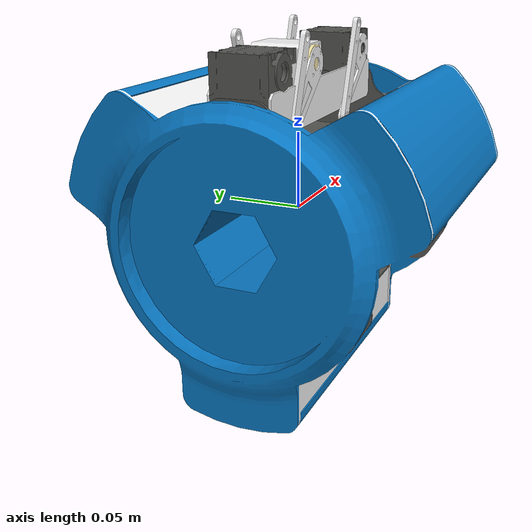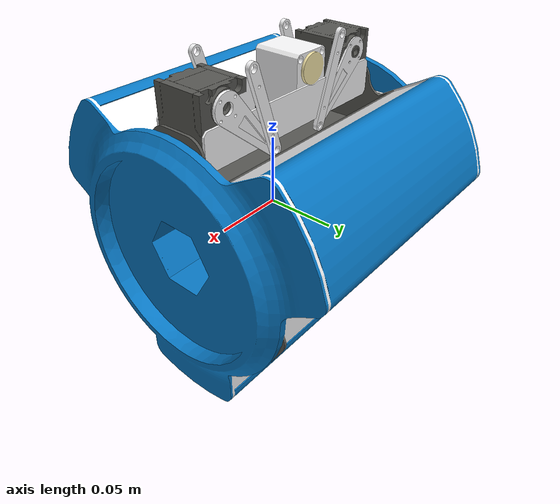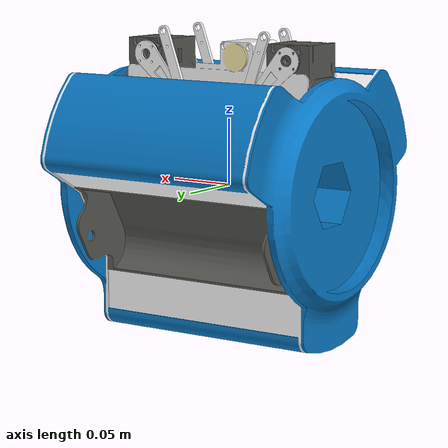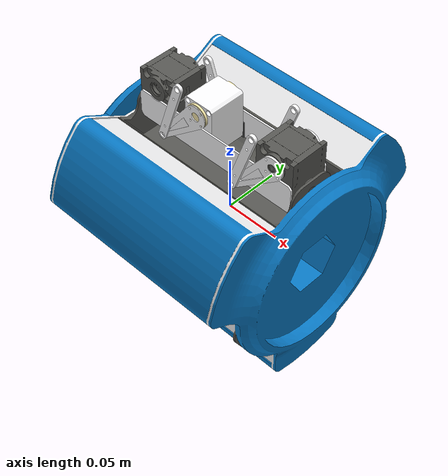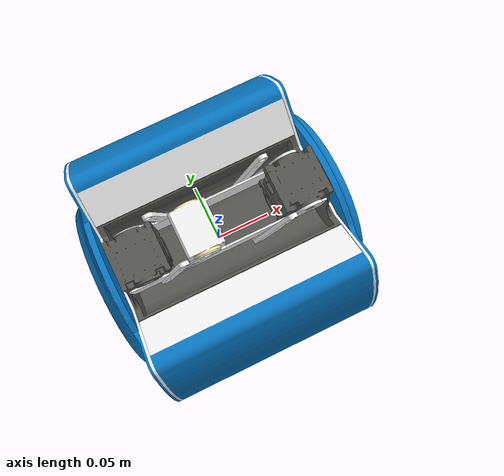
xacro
<robot xmlns:xacro="http://wiki.ros.org/xacro" name="test">

  <xacro:include filename="import_path.xacro"/>

  <xacro:body sufix="1">
  </xacro:body>

  <xacro:leg sufix="1"/><joint name="AttachableJoint_1body1_1leg1" type="fixed"><parent link="AttachableLink_1_body_1"/><child link="AttachableLink_1_leg_1"/><origin rpy="0 0 0" xyz="0 0 0"/></joint></robot>

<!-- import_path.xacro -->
<robot name="imports" xmlns:xacro="http://wiki.ros.org/xacro">

  <xacro:include filename="../models/rm2_body.xacro" />
  <xacro:include filename="../models/rm2_leg.xacro" />

</robot>

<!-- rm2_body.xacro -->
<robot name="body" xmlns:xacro="http://wiki.ros.org/xacro">

<xacro:macro name="body" params="sufix ">

  <link name='bodyBase_body_${sufix}'>
      <visual>
        <origin rpy="0 0 0" xyz="0 0 0"/>
        <geometry>
          <mesh filename="package://rm2_simulation/models/rm2_body/meshes/b_simple.dae"/>
        </geometry>
      </visual>
    <collision>
      <origin rpy="0 0 0" xyz="0 0 0"/>
      <geometry>
        <!--mesh filename="package://rm2_simulation/models/rm2_body/meshes/body_collision.stl"/-->
        <mesh filename="package://rm2_simulation/models/rm2_body/meshes/body_collision.stl"/>
      </geometry>
    </collision>
    <inertial>
        <mass value = "1.8" />
        <inertia ixx="2.501" ixy="0" ixz="0" iyy="2.501" iyz="0.0" izz="5"/>
    </inertial>
  </link>

  <link name="AttachableLink_1_body_${sufix}"/>
  <joint name="AttachableLinkJoint_1_body_${sufix}" type="fixed">
    <parent link="bodyBase_body_${sufix}"/>
    <child link="AttachableLink_1_body_${sufix}"/>
    <origin rpy="0 0 0" xyz="0.0 0 0.085"/>
  </joint>

  <link name="AttachableLink_2_body_${sufix}"/>
  <joint name="AttachableLinkJoint_2_body_${sufix}" type="fixed">
    <parent link="bodyBase_body_${sufix}"/>
    <child link="AttachableLink_2_body_${sufix}"/>
    <origin rpy="-2.0944 0 0" xyz="0.0 0.0736 -0.0425"/>
  </joint>

  <link name="AttachableLink_3_body_${sufix}"/>
  <joint name="AttachableLinkJoint_3_body_${sufix}" type="fixed">
    <parent link="bodyBase_body_${sufix}"/>
    <child link="AttachableLink_3_body_${sufix}"/>
    <origin rpy="2.0944 0 0" xyz="0.0 -0.0736 -0.0425"/>
  </joint>

</xacro:macro>

</robot>

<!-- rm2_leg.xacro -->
<robot name= "leg" xmlns:xacro="http://wiki.ros.org/xacro">
  <xacro:macro name="leg" params="sufix ">
    <link name="legLink_leg_${sufix}">
      <visual>
        <origin rpy="0.0 0 0" xyz="0 0 0"/>
        <geometry>
          <mesh filename="package://rm2_simulation/models/rm2_leg/meshes/l_simple.dae"/>
        </geometry>
      </visual>
      <collision>
        <geometry>
          <box size="0.166 0.040 0.047"/>
        </geometry>
        <origin rpy="0.0 0 0" xyz="0 0 0"/>
      </collision>
      <inertial>
        <mass value="0.6"/>
        <inertia ixx="0.032" ixy="0.0" ixz="0.0" iyy="0.032" iyz="0" izz="0.00012" />
      </inertial>
    </link>

    <!-- INCLUDE FRAME MOTOR 1 -->
    <link name="fm1Link_leg_${sufix}">
      <visual>
        <origin rpy="0 0 0" xyz="-0.0132 0 -0.01"/>
        <geometry>
          <mesh filename="package://rm2_simulation/models/rm2_leg/meshes/fm1_real.dae"/>
        </geometry>
      </visual>
      <collision>
        <geometry>
          <!--scale value="0.001 0.001 0.001"/-->
          <mesh filename="package://rm2_simulation/models/rm2_leg/meshes/fm1_collision.stl" scale="0.001 0.001 0.001"/>
        </geometry>
        <origin rpy="0.0 0 0" xyz="-0.0132 0 -0.0081"/> <!-- HAY QUE CAMBIAR ESTO -->
      </collision>
      <inertial>
        <mass value="0.1"/>
        <inertia ixx="0.032" ixy ="0" ixz ="0.0" iyy="0.032" iyz="0.0" izz="0.00012"/>
      </inertial>
    </link>

    <!-- JOINT LEG - FRAME MOTOR 1 -->
    <joint name="j_l_fm1_leg_${sufix}" type="fixed">
      <parent link="legLink_leg_${sufix}"/>
      <child link="fm1Link_leg_${sufix}"/>
      <axis xyz="0 1 0"/>
      <origin rpy="0 0 0" xyz="0.067490 0 0.009020"/>
      <limit effort="100.0" lower="0.0" upper="0.548" velocity="0.5"/>
      <!--dynamics damping="0.0" friction="0.0"/-->
    </joint>

    <!-- INCLUDE FRAME MOTOR 2 -->
    <link name="fm2Link_leg_${sufix}">
      <visual>
        <origin rpy="0.0 0 0" xyz="0.0125 0 -0.0134"/>
        <geometry>
          <mesh filename="package://rm2_simulation/models/rm2_leg/meshes/fm2_real.dae"/>
        </geometry>
      </visual>
      <collision>
        <geometry>
          <!--scale value="0.001 0.001 0.001"/-->
          <mesh filename="package://rm2_simulation/models/rm2_leg/meshes/fm2_collision.stl" scale="0.001 0.001 0.001"/>
        </geometry>
        <origin rpy="0.0 0 0" xyz="-0.0132 0 -0.0081"/> <!-- HAY QUE CAMBIAR ESTO -->
      </collision>
      <inertial>
        <mass value="0.1"/>
        <inertia ixx="0.032" ixy="0.0" ixz="0.0" iyy="0.032" iyz="0.0" izz="0.00012"/>
      </inertial>
    </link>

    <!-- JOINT LEG - FRAME MOTOR 2 -->
    <joint name="j_l_fm2_leg_${sufix}" type="fixed">
      <axis xyz="0 1 0"/>
      <parent link="legLink_leg_${sufix}"/>
      <child link="fm2Link_leg_${sufix}"/>
      <origin rpy="0 0 0" xyz="-0.057399 0.018994 0.012734"/>
    </joint>

    <!-- INCLUDE FRAME MOTOR 3 -->
    <link name="fm3Link_leg_${sufix}">
      <visual>
        <origin rpy="0 0 0" xyz="-0.0132 0 -0.0140"/>
        <geometry>
          <mesh filename="package://rm2_simulation/models/rm2_leg/meshes/fm3_real.dae"/>
        </geometry>
      </visual>
      <collision>
        <geometry>
          <!--scale value="0.001 0.001 0.001"/-->
          <mesh filename="package://rm2_simulation/models/rm2_leg/meshes/fm3_collision.stl" scale="0.001 0.001 0.001"/>
        </geometry>
        <origin rpy="0.0 0 0" xyz="-0.0132 0 -0.0081"/> <!-- HAY QUE CAMBIAR ESTO -->
      </collision>
      <inertial>
        <mass value="0.1"/>
        <inertia ixx="0.032" ixy="0.0" ixz="0.0" iyy="0.032" iyz="0.0" izz="0.00012"/>
      </inertial>
    </link>

    <!-- JOINT LEG - FRAME MOTOR 3 -->
    <joint name="j_l_fm3_leg_${sufix}" type="fixed">
      <axis xyz="0 1 0"/>
      <parent link="legLink_leg_${sufix}"/>
      <child link="fm3Link_leg_${sufix}"/>
      <origin rpy="0 0 0" xyz="-0.012 -0.018994 0.012734"/>
    </joint>

    <!-- INCLUDE FRAME ACTUATOR 1 -->
    <link name="fa1Link_leg_${sufix}">
      <visual>
        <origin rpy="0 0 0" xyz="0.01 0 0.03"/>
        <geometry>
          <mesh filename="package://rm2_simulation/models/rm2_leg/meshes/fa1_real.dae"/>
        </geometry>
      </visual>
      <collision>
        <geometry>
          <!--scale value="0.001 0.001 0.001"/-->
          <mesh filename="package://rm2_simulation/models/rm2_leg/meshes/fa1_collision.stl" scale="0.001 0.001 0.001"/>
        </geometry>
        <origin rpy="0.0 0 0" xyz="0.01 0 0.03"/> <!-- HAY QUE CAMBIAR ESTO -->
      </collision>
      <inertial>
        <mass value="0.1"/>
        <inertia ixx="0.032" ixy="0.0" ixz="0.0" iyy="0.032" iyz="0.0" izz="0.00012"/>
      </inertial>
    </link>

    <!-- JOINT FRAME MOTOR 1 - FRAME ACTUATOR 1 -->
    <joint name="j_fm1_fa1_leg_${sufix}" type="fixed">
      <axis xyz="0 1 0"/>
      <parent link="fm1Link_leg_${sufix}"/>
      <child link="fa1Link_leg_${sufix}"/>
      <origin rpy="0 0 0" xyz="-0.03865 0 -0.03721"/>
    </joint>

    <!-- INCLUDE FRAME ACTUATOR 2 -->
    <link name="fa2Link_leg_${sufix}">
      <visual>
        <origin rpy="0 0 0" xyz="-0.01 0 0.025"/>
        <geometry>
          <mesh filename="package://rm2_simulation/models/rm2_leg/meshes/fa2_real.dae"/>
        </geometry>
      </visual>
      <collision>
        <geometry>
          <!--scale value="0.001 0.001 0.001"/-->
          <mesh filename="package://rm2_simulation/models/rm2_leg/meshes/fa2_collision.stl" scale="0.001 0.001 0.001"/>
        </geometry>
        <origin rpy="0.0 0 0" xyz="0 0 0"/> <!-- HAY QUE CAMBIAR ESTO -->
      </collision>
      <inertial>
        <mass value="0.1"/>
        <inertia ixx="0.032" ixy="0.0" ixz="0.0" iyy="0.032" iyz="0.0" izz="0.00012"/>
      </inertial>
    </link>

    <!-- JOINT FRAME MOTOR 2 - FRAME ACTUATOR 2 -->
    <joint name="j_fm2_fa2_leg_${sufix}" type="fixed">
      <axis xyz="0 1 0"/>
      <parent link="fm2Link_leg_${sufix}"/>
      <child link="fa2Link_leg_${sufix}"/>
      <origin rpy="0 0 0" xyz="0.03865 0.000851 -0.03721"/>-
    </joint>

  <!-- INCLUDE FRAME ACTUATOR 3 -->
    <link name="fa3Link_leg_${sufix}">
      <visual>
        <origin rpy="0 0 0" xyz="0.01 0 0.025"/>
        <geometry>
          <mesh filename="package://rm2_simulation/models/rm2_leg/meshes/fa3_real.dae"/>
        </geometry>
      </visual>
      <collision>
        <geometry>
          <!--scale value="0.001 0.001 0.001"/-->
          <mesh filename="package://rm2_simulation/models/rm2_leg/meshes/fa3_collision.stl" scale="0.001 0.001 0.001"/>
        </geometry>
        <origin rpy="0.0 0 0" xyz="0 0 0"/> <!-- HAY QUE CAMBIAR ESTO -->
      </collision>
      <inertial>
        <mass value="0.1"/>
        <inertia ixx="0.032" ixy="0.0" ixz="0.0" iyy="0.032" iyz="0.0" izz="0.00012"/>
      </inertial>
    </link>

    <!-- JOINT FRAME MOTOR 3 - FRAME ACTUATOR 3 -->
    <joint name="j_fm3_fa3_leg_${sufix}" type="fixed">
      <axis xyz="0 1 0"/>
      <parent link="fm3Link_leg_${sufix}"/>
      <child link="fa3Link_leg_${sufix}"/>
      <origin rpy="0 0 0" xyz="-0.038265 -0.000851 -0.03721"/>
    </joint>

  <link name="AttachableLink_1_leg_${sufix}">
  </link>
  <joint name="AttachableLinkJoint_1_leg_${sufix}" type="fixed">
    <parent link="AttachableLink_1_leg_${sufix}"/>
    <child link="legLink_leg_${sufix}"/>
    <origin rpy="0 0 0" xyz="-0.005 0 0"/>
  </joint>

  </xacro:macro>
</robot>
